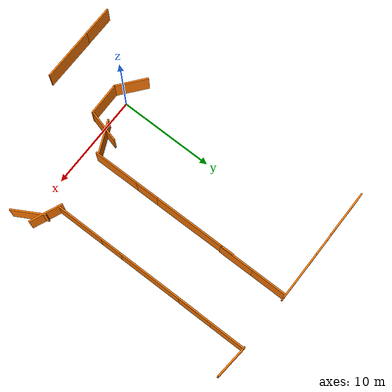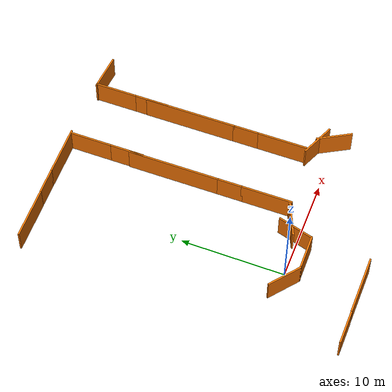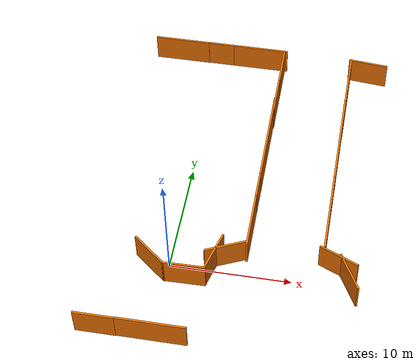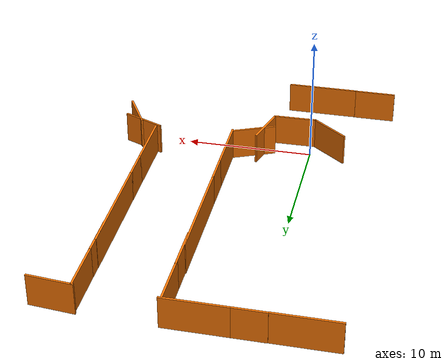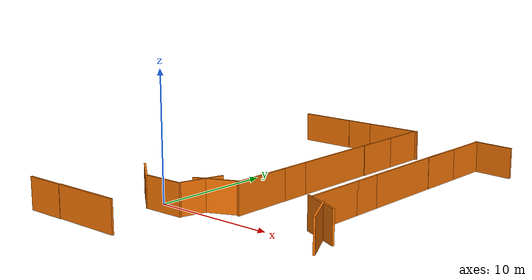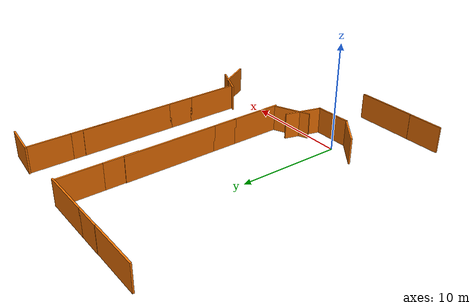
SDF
<sdf version="1.7">
 <world name="cimen_zemin_dunyasi">
  <model name="barier3">
   <pose>8.34987 9.56962 0 0 0 -1.56341</pose>
   <link name="Wall_5">
    <collision name="Wall_5_Collision">
     <geometry><box><size>9 0.15 2.5</size></box></geometry>
     <pose>0 0 1.25 0 -0 0</pose>
    </collision>
    <visual name="Wall_5_Visual">
     <pose>0 0 1.25 0 -0 0</pose>
     <geometry><box><size>9 0.15 2.5</size></box></geometry>
     <material>
      <script><uri>file://media/materials/scripts/gazebo.material</uri><name>Gazebo/Grey</name></script>
      <ambient>0.996078 0.47451 0.0196078 1</ambient>
     </material>
     <meta><layer>0</layer></meta>
    </visual>
    <pose>-3.6 -2.29057 0 0 -0 0</pose>
   </link>
   <link name="Wall_7">
    <collision name="Wall_7_Collision">
     <geometry><box><size>2.5 0.15 2.5</size></box></geometry>
     <pose>0 0 1.25 0 -0 0</pose>
    </collision>
    <visual name="Wall_7_Visual">
     <pose>0 0 1.25 0 -0 0</pose>
     <geometry><box><size>2.5 0.15 2.5</size></box></geometry>
     <material>
      <script><uri>file://media/materials/scripts/gazebo.material</uri><name>Gazebo/Grey</name></script>
      <ambient>0.996078 0.47451 0.0196078 1</ambient>
     </material>
     <meta><layer>0</layer></meta>
    </visual>
    <pose>2 -2.29057 0 0 -0 0</pose>
   </link>
   <link name="Wall_9">
    <collision name="Wall_9_Collision">
     <geometry><box><size>5 0.15 2.5</size></box></geometry>
     <pose>0 0 1.25 0 -0 0</pose>
    </collision>
    <visual name="Wall_9_Visual">
     <pose>0 0 1.25 0 -0 0</pose>
     <geometry><box><size>5 0.15 2.5</size></box></geometry>
     <material>
      <script><uri>file://media/materials/scripts/gazebo.material</uri><name>Gazebo/Grey</name></script>
      <ambient>0.996078 0.47451 0.0196078 1</ambient>
     </material>
     <meta><layer>0</layer></meta>
    </visual>
    <pose>5.6 -2.29057 0 0 -0 0</pose>
   </link>
   <static>1</static>
  </model>
  <model name="barier3_clone_clone_clone">
   <link name="Wall_5">
    <pose>-1.71579 -2.31114 0 0 -0 0</pose>
    <inertial>
     <inertia><ixx>0</ixx><ixy>0</ixy><ixz>0</ixz><iyy>0</iyy><iyz>0</iyz><izz>0</izz></inertia>
     <mass>0</mass>
    </inertial>
    <visual name="Wall_5_Visual">
     <pose>0 0 1.25 0 -0 0</pose>
     <geometry><box><size>4.94626 0.15 2.5</size></box></geometry>
     <material>
      <script><uri>file://media/materials/scripts/gazebo.material</uri><name>Gazebo/Grey</name></script>
      <ambient>0.996078 0.47451 0.0196078 1</ambient>
      <shader type="pixel"/>
     </material>
     <meta><layer>0</layer></meta>
    </visual>
    <collision name="Wall_5_Collision">
     <pose>0 0 1.25 0 -0 0</pose>
     <geometry><box><size>4.94626 0.15 2.5</size></box></geometry>
     <surface>
      <friction>
       <ode><mu>1</mu><mu2>1</mu2><fdir1>0 0 0</fdir1><slip1>0</slip1><slip2>0</slip2></ode>
       <torsional>
        <coefficient>1</coefficient>
        <patch_radius>0</patch_radius>
        <surface_radius>0</surface_radius>
        <use_patch_radius>1</use_patch_radius>
        <ode><slip>0</slip></ode>
       </torsional>
      </friction>
      <bounce><restitution_coefficient>0</restitution_coefficient><threshold>1e+06</threshold></bounce>
      <contact>
       <collide_without_contact>0</collide_without_contact>
       <collide_without_contact_bitmask>1</collide_without_contact_bitmask>
       <collide_bitmask>1</collide_bitmask>
       <ode>
        <soft_cfm>0</soft_cfm>
        <soft_erp>0.2</soft_erp>
        <kp>1e+13</kp>
        <kd>1</kd>
        <max_vel>0.01</max_vel>
        <min_depth>0</min_depth>
       </ode>
       <bullet>
        <split_impulse>1</split_impulse>
        <split_impulse_penetration_threshold>-0.01</split_impulse_penetration_threshold>
        <soft_cfm>0</soft_cfm>
        <soft_erp>0.2</soft_erp>
        <kp>1e+13</kp>
        <kd>1</kd>
       </bullet>
      </contact>
     </surface>
    </collision>
   </link>
   <link name="Wall_7">
    <pose>2 -2.29057 0 0 -0 0</pose>
    <visual name="Wall_7_Visual">
     <pose>0 0 1.25 0 -0 0</pose>
     <geometry><box><size>2.5 0.15 2.5</size></box></geometry>
     <material>
      <script><uri>file://media/materials/scripts/gazebo.material</uri><name>Gazebo/Grey</name></script>
      <ambient>0.996078 0.47451 0.0196078 1</ambient>
      <shader type="pixel"/>
     </material>
     <meta><layer>0</layer></meta>
    </visual>
    <collision name="Wall_7_Collision">
     <pose>0 0 1.25 0 -0 0</pose>
     <geometry><box><size>2.5 0.15 2.5</size></box></geometry>
     <surface>
      <friction>
       <ode><mu>1</mu><mu2>1</mu2><fdir1>0 0 0</fdir1><slip1>0</slip1><slip2>0</slip2></ode>
       <torsional>
        <coefficient>1</coefficient>
        <patch_radius>0</patch_radius>
        <surface_radius>0</surface_radius>
        <use_patch_radius>1</use_patch_radius>
        <ode><slip>0</slip></ode>
       </torsional>
      </friction>
      <bounce><restitution_coefficient>0</restitution_coefficient><threshold>1e+06</threshold></bounce>
      <contact>
       <collide_without_contact>0</collide_without_contact>
       <collide_without_contact_bitmask>1</collide_without_contact_bitmask>
       <collide_bitmask>1</collide_bitmask>
       <ode>
        <soft_cfm>0</soft_cfm>
        <soft_erp>0.2</soft_erp>
        <kp>1e+13</kp>
        <kd>1</kd>
        <max_vel>0.01</max_vel>
        <min_depth>0</min_depth>
       </ode>
       <bullet>
        <split_impulse>1</split_impulse>
        <split_impulse_penetration_threshold>-0.01</split_impulse_penetration_threshold>
        <soft_cfm>0</soft_cfm>
        <soft_erp>0.2</soft_erp>
        <kp>1e+13</kp>
        <kd>1</kd>
       </bullet>
      </contact>
     </surface>
    </collision>
   </link>
   <link name="Wall_9">
    <pose>5.6 -2.29057 0 0 -0 0</pose>
    <visual name="Wall_9_Visual">
     <pose>0 0 1.25 0 -0 0</pose>
     <geometry><box><size>5 0.15 2.5</size></box></geometry>
     <material>
      <script><uri>file://media/materials/scripts/gazebo.material</uri><name>Gazebo/Grey</name></script>
      <ambient>0.996078 0.47451 0.0196078 1</ambient>
      <shader type="pixel"/>
     </material>
     <meta><layer>0</layer></meta>
    </visual>
    <collision name="Wall_9_Collision">
     <pose>0 0 1.25 0 -0 0</pose>
     <geometry><box><size>5 0.15 2.5</size></box></geometry>
     <surface>
      <friction>
       <ode><mu>1</mu><mu2>1</mu2><fdir1>0 0 0</fdir1><slip1>0</slip1><slip2>0</slip2></ode>
       <torsional>
        <coefficient>1</coefficient>
        <patch_radius>0</patch_radius>
        <surface_radius>0</surface_radius>
        <use_patch_radius>1</use_patch_radius>
        <ode><slip>0</slip></ode>
       </torsional>
      </friction>
      <bounce><restitution_coefficient>0</restitution_coefficient><threshold>1e+06</threshold></bounce>
      <contact>
       <collide_without_contact>0</collide_without_contact>
       <collide_without_contact_bitmask>1</collide_without_contact_bitmask>
       <collide_bitmask>1</collide_bitmask>
       <ode>
        <soft_cfm>0</soft_cfm>
        <soft_erp>0.2</soft_erp>
        <kp>1e+13</kp>
        <kd>1</kd>
        <max_vel>0.01</max_vel>
        <min_depth>0</min_depth>
       </ode>
       <bullet>
        <split_impulse>1</split_impulse>
        <split_impulse_penetration_threshold>-0.01</split_impulse_penetration_threshold>
        <soft_cfm>0</soft_cfm>
        <soft_erp>0.2</soft_erp>
        <kp>1e+13</kp>
        <kd>1</kd>
       </bullet>
      </contact>
     </surface>
    </collision>
   </link>
   <static>1</static>
   <pose>-1.81563 25.8917 0 0 -0 0</pose>
  </model>
  <model name="barier3_clone_clone_clone_clone_0_clone_clone_clone_clone_0_clone">
   <link name="Wall_5">
    <pose>-0.876122 -2.31251 -0.000674 0 -0 0</pose>
    <inertial>
     <inertia><ixx>0</ixx><ixy>0</ixy><ixz>0</ixz><iyy>0</iyy><iyz>0</iyz><izz>0</izz></inertia>
     <mass>0</mass>
    </inertial>
    <visual name="Wall_5_Visual">
     <pose>0 0 1.25 0 -0 0</pose>
     <geometry><box><size>3.28339 0.15 2.5</size></box></geometry>
     <material>
      <script><uri>file://media/materials/scripts/gazebo.material</uri><name>Gazebo/Grey</name></script>
      <ambient>0.996078 0.47451 0.0196078 1</ambient>
      <shader type="pixel"/>
     </material>
     <meta><layer>0</layer></meta>
    </visual>
    <collision name="Wall_5_Collision">
     <pose>0 0 1.25 0 -0 0</pose>
     <geometry><box><size>3.28339 0.15 2.5</size></box></geometry>
     <surface>
      <friction>
       <ode><mu>1</mu><mu2>1</mu2><fdir1>0 0 0</fdir1><slip1>0</slip1><slip2>0</slip2></ode>
       <torsional>
        <coefficient>1</coefficient>
        <patch_radius>0</patch_radius>
        <surface_radius>0</surface_radius>
        <use_patch_radius>1</use_patch_radius>
        <ode><slip>0</slip></ode>
       </torsional>
      </friction>
      <bounce><restitution_coefficient>0</restitution_coefficient><threshold>1e+06</threshold></bounce>
      <contact>
       <collide_without_contact>0</collide_without_contact>
       <collide_without_contact_bitmask>1</collide_without_contact_bitmask>
       <collide_bitmask>1</collide_bitmask>
       <ode>
        <soft_cfm>0</soft_cfm>
        <soft_erp>0.2</soft_erp>
        <kp>1e+13</kp>
        <kd>1</kd>
        <max_vel>0.01</max_vel>
        <min_depth>0</min_depth>
       </ode>
       <bullet>
        <split_impulse>1</split_impulse>
        <split_impulse_penetration_threshold>-0.01</split_impulse_penetration_threshold>
        <soft_cfm>0</soft_cfm>
        <soft_erp>0.2</soft_erp>
        <kp>1e+13</kp>
        <kd>1</kd>
       </bullet>
      </contact>
     </surface>
    </collision>
   </link>
   <link name="Wall_9">
    <pose>3.5903 -2.29153 0.020971 0 -0 0</pose>
    <inertial>
     <inertia><ixx>0</ixx><ixy>0</ixy><ixz>0</ixz><iyy>0</iyy><iyz>0</iyz><izz>0</izz></inertia>
     <mass>0</mass>
    </inertial>
    <visual name="Wall_9_Visual">
     <pose>0 0 1.25 0 -0 0</pose>
     <geometry><box><size>5.65108 0.15 2.5</size></box></geometry>
     <material>
      <script><uri>file://media/materials/scripts/gazebo.material</uri><name>Gazebo/Grey</name></script>
      <ambient>0.996078 0.47451 0.0196078 1</ambient>
      <shader type="pixel"/>
     </material>
     <meta><layer>0</layer></meta>
    </visual>
    <collision name="Wall_9_Collision">
     <pose>0 0 1.25 0 -0 0</pose>
     <geometry><box><size>5.65108 0.15 2.5</size></box></geometry>
     <surface>
      <friction>
       <ode><mu>1</mu><mu2>1</mu2><fdir1>0 0 0</fdir1><slip1>0</slip1><slip2>0</slip2></ode>
       <torsional>
        <coefficient>1</coefficient>
        <patch_radius>0</patch_radius>
        <surface_radius>0</surface_radius>
        <use_patch_radius>1</use_patch_radius>
        <ode><slip>0</slip></ode>
       </torsional>
      </friction>
      <bounce><restitution_coefficient>0</restitution_coefficient><threshold>1e+06</threshold></bounce>
      <contact>
       <collide_without_contact>0</collide_without_contact>
       <collide_without_contact_bitmask>1</collide_without_contact_bitmask>
       <collide_bitmask>1</collide_bitmask>
       <ode>
        <soft_cfm>0</soft_cfm>
        <soft_erp>0.2</soft_erp>
        <kp>1e+13</kp>
        <kd>1</kd>
        <max_vel>0.01</max_vel>
        <min_depth>0</min_depth>
       </ode>
       <bullet>
        <split_impulse>1</split_impulse>
        <split_impulse_penetration_threshold>-0.01</split_impulse_penetration_threshold>
        <soft_cfm>0</soft_cfm>
        <soft_erp>0.2</soft_erp>
        <kp>1e+13</kp>
        <kd>1</kd>
       </bullet>
      </contact>
     </surface>
    </collision>
   </link>
   <static>1</static>
   <pose>-3.50952 -4.75677 0 0 -0 0</pose>
  </model>
  <model name="barier3_clone_clone_clone_clone_0_clone_clone_0_clone_clone_clone">
   <link name="Wall_5">
    <pose>-1.14926 -2.31114 0 0 -0 0</pose>
    <inertial>
     <inertia><ixx>0</ixx><ixy>0</ixy><ixz>0</ixz><iyy>0</iyy><iyz>0</iyz><izz>0</izz></inertia>
     <mass>0</mass>
    </inertial>
    <visual name="Wall_5_Visual">
     <pose>0 0 1.25 0 -0 0</pose>
     <geometry><box><size>4.04839 0.15 2.5</size></box></geometry>
     <material>
      <script><uri>file://media/materials/scripts/gazebo.material</uri><name>Gazebo/Grey</name></script>
      <ambient>0.996078 0.47451 0.0196078 1</ambient>
      <shader type="pixel"/>
     </material>
     <meta><layer>0</layer></meta>
    </visual>
    <collision name="Wall_5_Collision">
     <pose>0 0 1.25 0 -0 0</pose>
     <geometry><box><size>4.04839 0.15 2.5</size></box></geometry>
     <surface>
      <friction>
       <ode><mu>1</mu><mu2>1</mu2><fdir1>0 0 0</fdir1><slip1>0</slip1><slip2>0</slip2></ode>
       <torsional>
        <coefficient>1</coefficient>
        <patch_radius>0</patch_radius>
        <surface_radius>0</surface_radius>
        <use_patch_radius>1</use_patch_radius>
        <ode><slip>0</slip></ode>
       </torsional>
      </friction>
      <bounce><restitution_coefficient>0</restitution_coefficient><threshold>1e+06</threshold></bounce>
      <contact>
       <collide_without_contact>0</collide_without_contact>
       <collide_without_contact_bitmask>1</collide_without_contact_bitmask>
       <collide_bitmask>1</collide_bitmask>
       <ode>
        <soft_cfm>0</soft_cfm>
        <soft_erp>0.2</soft_erp>
        <kp>1e+13</kp>
        <kd>1</kd>
        <max_vel>0.01</max_vel>
        <min_depth>0</min_depth>
       </ode>
       <bullet>
        <split_impulse>1</split_impulse>
        <split_impulse_penetration_threshold>-0.01</split_impulse_penetration_threshold>
        <soft_cfm>0</soft_cfm>
        <soft_erp>0.2</soft_erp>
        <kp>1e+13</kp>
        <kd>1</kd>
       </bullet>
      </contact>
     </surface>
    </collision>
   </link>
   <link name="Wall_9">
    <pose>2.34493 -2.31065 0 0 -0 0</pose>
    <inertial>
     <inertia><ixx>0</ixx><ixy>0</ixy><ixz>0</ixz><iyy>0</iyy><iyz>0</iyz><izz>0</izz></inertia>
     <mass>0</mass>
    </inertial>
    <visual name="Wall_9_Visual">
     <pose>0 0 1.25 0 -0 0</pose>
     <geometry><box><size>3.66586 0.15 2.5</size></box></geometry>
     <material>
      <script><uri>file://media/materials/scripts/gazebo.material</uri><name>Gazebo/Grey</name></script>
      <ambient>0.996078 0.47451 0.0196078 1</ambient>
      <shader type="pixel"/>
     </material>
     <meta><layer>0</layer></meta>
    </visual>
    <collision name="Wall_9_Collision">
     <pose>0 0 1.25 0 -0 0</pose>
     <geometry><box><size>3.66586 0.15 2.5</size></box></geometry>
     <surface>
      <friction>
       <ode><mu>1</mu><mu2>1</mu2><fdir1>0 0 0</fdir1><slip1>0</slip1><slip2>0</slip2></ode>
       <torsional>
        <coefficient>1</coefficient>
        <patch_radius>0</patch_radius>
        <surface_radius>0</surface_radius>
        <use_patch_radius>1</use_patch_radius>
        <ode><slip>0</slip></ode>
       </torsional>
      </friction>
      <bounce><restitution_coefficient>0</restitution_coefficient><threshold>1e+06</threshold></bounce>
      <contact>
       <collide_without_contact>0</collide_without_contact>
       <collide_without_contact_bitmask>1</collide_without_contact_bitmask>
       <collide_bitmask>1</collide_bitmask>
       <ode>
        <soft_cfm>0</soft_cfm>
        <soft_erp>0.2</soft_erp>
        <kp>1e+13</kp>
        <kd>1</kd>
        <max_vel>0.01</max_vel>
        <min_depth>0</min_depth>
       </ode>
       <bullet>
        <split_impulse>1</split_impulse>
        <split_impulse_penetration_threshold>-0.01</split_impulse_penetration_threshold>
        <soft_cfm>0</soft_cfm>
        <soft_erp>0.2</soft_erp>
        <kp>1e+13</kp>
        <kd>1</kd>
       </bullet>
      </contact>
     </surface>
    </collision>
   </link>
   <static>1</static>
   <pose>8.35073 20.4081 0 0 0 -1.56598</pose>
  </model>
  <model name="barier3_clone_0">
   <pose>14.5457 10.2617 0 0 0 -1.56341</pose>
   <link name="Wall_5">
    <collision name="Wall_5_Collision">
     <geometry><box><size>9 0.15 2.5</size></box></geometry>
     <pose>0 0 1.25 0 -0 0</pose>
    </collision>
    <visual name="Wall_5_Visual">
     <pose>0 0 1.25 0 -0 0</pose>
     <geometry><box><size>9 0.15 2.5</size></box></geometry>
     <material>
      <script><uri>file://media/materials/scripts/gazebo.material</uri><name>Gazebo/Grey</name></script>
      <ambient>0.996078 0.47451 0.0196078 1</ambient>
     </material>
     <meta><layer>0</layer></meta>
    </visual>
    <pose>-3.6 -2.29057 0 0 -0 0</pose>
   </link>
   <link name="Wall_7">
    <collision name="Wall_7_Collision">
     <geometry><box><size>2.5 0.15 2.5</size></box></geometry>
     <pose>0 0 1.25 0 -0 0</pose>
    </collision>
    <visual name="Wall_7_Visual">
     <pose>0 0 1.25 0 -0 0</pose>
     <geometry><box><size>2.5 0.15 2.5</size></box></geometry>
     <material>
      <script><uri>file://media/materials/scripts/gazebo.material</uri><name>Gazebo/Grey</name></script>
      <ambient>0.996078 0.47451 0.0196078 1</ambient>
     </material>
     <meta><layer>0</layer></meta>
    </visual>
    <pose>2 -2.29057 0 0 -0 0</pose>
   </link>
   <link name="Wall_9">
    <collision name="Wall_9_Collision">
     <geometry><box><size>5 0.15 2.5</size></box></geometry>
     <pose>0 0 1.25 0 -0 0</pose>
    </collision>
    <visual name="Wall_9_Visual">
     <pose>0 0 1.25 0 -0 0</pose>
     <geometry><box><size>5 0.15 2.5</size></box></geometry>
     <material>
      <script><uri>file://media/materials/scripts/gazebo.material</uri><name>Gazebo/Grey</name></script>
      <ambient>0.996078 0.47451 0.0196078 1</ambient>
     </material>
     <meta><layer>0</layer></meta>
    </visual>
    <pose>5.6 -2.29057 0 0 -0 0</pose>
   </link>
   <static>1</static>
  </model>
  <model name="barier3_clone_clone_clone_clone_0_clone_clone_0_clone_clone_clone_clone">
   <link name="Wall_5">
    <pose>-1.14926 -2.31114 0 0 -0 0</pose>
    <inertial>
     <inertia><ixx>0</ixx><ixy>0</ixy><ixz>0</ixz><iyy>0</iyy><iyz>0</iyz><izz>0</izz></inertia>
     <mass>0</mass>
    </inertial>
    <visual name="Wall_5_Visual">
     <pose>0 0 1.25 0 -0 0</pose>
     <geometry><box><size>4.04839 0.15 2.5</size></box></geometry>
     <material>
      <script><uri>file://media/materials/scripts/gazebo.material</uri><name>Gazebo/Grey</name></script>
      <ambient>0.996078 0.47451 0.0196078 1</ambient>
      <shader type="pixel"/>
     </material>
     <meta><layer>0</layer></meta>
    </visual>
    <collision name="Wall_5_Collision">
     <pose>0 0 1.25 0 -0 0</pose>
     <geometry><box><size>4.04839 0.15 2.5</size></box></geometry>
     <surface>
      <friction>
       <ode><mu>1</mu><mu2>1</mu2><fdir1>0 0 0</fdir1><slip1>0</slip1><slip2>0</slip2></ode>
       <torsional>
        <coefficient>1</coefficient>
        <patch_radius>0</patch_radius>
        <surface_radius>0</surface_radius>
        <use_patch_radius>1</use_patch_radius>
        <ode><slip>0</slip></ode>
       </torsional>
      </friction>
      <bounce><restitution_coefficient>0</restitution_coefficient><threshold>1e+06</threshold></bounce>
      <contact>
       <collide_without_contact>0</collide_without_contact>
       <collide_without_contact_bitmask>1</collide_without_contact_bitmask>
       <collide_bitmask>1</collide_bitmask>
       <ode>
        <soft_cfm>0</soft_cfm>
        <soft_erp>0.2</soft_erp>
        <kp>1e+13</kp>
        <kd>1</kd>
        <max_vel>0.01</max_vel>
        <min_depth>0</min_depth>
       </ode>
       <bullet>
        <split_impulse>1</split_impulse>
        <split_impulse_penetration_threshold>-0.01</split_impulse_penetration_threshold>
        <soft_cfm>0</soft_cfm>
        <soft_erp>0.2</soft_erp>
        <kp>1e+13</kp>
        <kd>1</kd>
       </bullet>
      </contact>
     </surface>
    </collision>
   </link>
   <link name="Wall_9">
    <pose>2.34493 -2.31065 0 0 -0 0</pose>
    <inertial>
     <inertia><ixx>0</ixx><ixy>0</ixy><ixz>0</ixz><iyy>0</iyy><iyz>0</iyz><izz>0</izz></inertia>
     <mass>0</mass>
    </inertial>
    <visual name="Wall_9_Visual">
     <pose>0 0 1.25 0 -0 0</pose>
     <geometry><box><size>3.66586 0.15 2.5</size></box></geometry>
     <material>
      <script><uri>file://media/materials/scripts/gazebo.material</uri><name>Gazebo/Grey</name></script>
      <ambient>0.996078 0.47451 0.0196078 1</ambient>
      <shader type="pixel"/>
     </material>
     <meta><layer>0</layer></meta>
    </visual>
    <collision name="Wall_9_Collision">
     <pose>0 0 1.25 0 -0 0</pose>
     <geometry><box><size>3.66586 0.15 2.5</size></box></geometry>
     <surface>
      <friction>
       <ode><mu>1</mu><mu2>1</mu2><fdir1>0 0 0</fdir1><slip1>0</slip1><slip2>0</slip2></ode>
       <torsional>
        <coefficient>1</coefficient>
        <patch_radius>0</patch_radius>
        <surface_radius>0</surface_radius>
        <use_patch_radius>1</use_patch_radius>
        <ode><slip>0</slip></ode>
       </torsional>
      </friction>
      <bounce><restitution_coefficient>0</restitution_coefficient><threshold>1e+06</threshold></bounce>
      <contact>
       <collide_without_contact>0</collide_without_contact>
       <collide_without_contact_bitmask>1</collide_without_contact_bitmask>
       <collide_bitmask>1</collide_bitmask>
       <ode>
        <soft_cfm>0</soft_cfm>
        <soft_erp>0.2</soft_erp>
        <kp>1e+13</kp>
        <kd>1</kd>
        <max_vel>0.01</max_vel>
        <min_depth>0</min_depth>
       </ode>
       <bullet>
        <split_impulse>1</split_impulse>
        <split_impulse_penetration_threshold>-0.01</split_impulse_penetration_threshold>
        <soft_cfm>0</soft_cfm>
        <soft_erp>0.2</soft_erp>
        <kp>1e+13</kp>
        <kd>1</kd>
       </bullet>
      </contact>
     </surface>
    </collision>
   </link>
   <static>1</static>
   <pose>14.516 20.3467 0 0 0 -1.56598</pose>
  </model>
  <model name="barrier2_clone_clone_0">
   <pose>13.1136 1.14409 0 0 -0 2.08676</pose>
   <link name="Wall_3">
    <collision name="Wall_3_Collision">
     <geometry><box><size>3.5 0.15 2.5</size></box></geometry>
     <pose>0 0 1.25 0 -0 0</pose>
    </collision>
    <visual name="Wall_3_Visual">
     <pose>0 0 1.25 0 -0 0</pose>
     <geometry><box><size>3.5 0.15 2.5</size></box></geometry>
     <material>
      <script><uri>file://media/materials/scripts/gazebo.material</uri><name>Gazebo/Grey</name></script>
      <ambient>0.996078 0.47451 0.0196078 1</ambient>
     </material>
     <meta><layer>0</layer></meta>
    </visual>
    <pose>-1.55327 -0.720218 0 0 -0 0</pose>
   </link>
   <static>1</static>
  </model>
  <model name="barrier2_clone_clone_0_clone">
   <pose>11.8327 1.44518 0 0 -0 2.73706</pose>
   <link name="Wall_3">
    <collision name="Wall_3_Collision">
     <geometry><box><size>3.5 0.15 2.5</size></box></geometry>
     <pose>0 0 1.25 0 -0 0</pose>
    </collision>
    <visual name="Wall_3_Visual">
     <pose>0 0 1.25 0 -0 0</pose>
     <geometry><box><size>3.5 0.15 2.5</size></box></geometry>
     <material>
      <script><uri>file://media/materials/scripts/gazebo.material</uri><name>Gazebo/Grey</name></script>
      <ambient>0.996078 0.47451 0.0196078 1</ambient>
     </material>
     <meta><layer>0</layer></meta>
    </visual>
    <pose>-1.55327 -0.720218 0 0 -0 0</pose>
   </link>
   <static>1</static>
  </model>
  <model name="barrier2_clone_clone_0_clone_0">
   <pose>3.32046 -0.310571 0 0 0 -2.72327</pose>
   <link name="Wall_3">
    <collision name="Wall_3_Collision">
     <geometry><box><size>3.5 0.15 2.5</size></box></geometry>
     <pose>0 0 1.25 0 -0 0</pose>
    </collision>
    <visual name="Wall_3_Visual">
     <pose>0 0 1.25 0 -0 0</pose>
     <geometry><box><size>3.5 0.15 2.5</size></box></geometry>
     <material>
      <script><uri>file://media/materials/scripts/gazebo.material</uri><name>Gazebo/Grey</name></script>
      <ambient>0.996078 0.47451 0.0196078 1</ambient>
     </material>
     <meta><layer>0</layer></meta>
    </visual>
    <pose>-1.55327 -0.720218 0 0 -0 0</pose>
   </link>
   <static>1</static>
  </model>
  <model name="barrier2_clone_clone_0_clone_0_clone">
   <pose>3.93477 -1.35196 0 0 0 -1.83607</pose>
   <link name="Wall_3">
    <collision name="Wall_3_Collision">
     <geometry><box><size>3.5 0.15 2.5</size></box></geometry>
     <pose>0 0 1.25 0 -0 0</pose>
    </collision>
    <visual name="Wall_3_Visual">
     <pose>0 0 1.25 0 -0 0</pose>
     <geometry><box><size>3.5 0.15 2.5</size></box></geometry>
     <material>
      <script><uri>file://media/materials/scripts/gazebo.material</uri><name>Gazebo/Grey</name></script>
      <ambient>0.996078 0.47451 0.0196078 1</ambient>
     </material>
     <meta><layer>0</layer></meta>
    </visual>
    <pose>-1.55327 -0.720218 0 0 -0 0</pose>
   </link>
   <static>1</static>
  </model>
  <model name="barrier2_clone_clone_0_clone_clone">
   <pose>-0.007255 -2.146 0 0 0 -3.12669</pose>
   <link name="Wall_3">
    <collision name="Wall_3_Collision">
     <geometry><box><size>3.5 0.15 2.5</size></box></geometry>
     <pose>0 0 1.25 0 -0 0</pose>
    </collision>
    <visual name="Wall_3_Visual">
     <pose>0 0 1.25 0 -0 0</pose>
     <geometry><box><size>3.5 0.15 2.5</size></box></geometry>
     <material>
      <script><uri>file://media/materials/scripts/gazebo.material</uri><name>Gazebo/Grey</name></script>
      <ambient>0.996078 0.47451 0.0196078 1</ambient>
     </material>
     <meta><layer>0</layer></meta>
    </visual>
    <pose>-1.55327 -0.720218 0 0 -0 0</pose>
   </link>
   <static>1</static>
  </model>
  <model name="barrier2_clone_clone_0_clone_clone_clone">
   <pose>-3.1025 0.012439 0 0 -0 2.46427</pose>
   <link name="Wall_3">
    <collision name="Wall_3_Collision">
     <geometry><box><size>3.5 0.15 2.5</size></box></geometry>
     <pose>0 0 1.25 0 -0 0</pose>
    </collision>
    <visual name="Wall_3_Visual">
     <pose>0 0 1.25 0 -0 0</pose>
     <geometry><box><size>3.5 0.15 2.5</size></box></geometry>
     <material>
      <script><uri>file://media/materials/scripts/gazebo.material</uri><name>Gazebo/Grey</name></script>
      <ambient>0.996078 0.47451 0.0196078 1</ambient>
     </material>
     <meta><layer>0</layer></meta>
    </visual>
    <pose>-1.55327 -0.720218 0 0 -0 0</pose>
   </link>
   <static>1</static>
  </model>
  <model name="barrier2_clone_clone_0_clone_clone_0">
   <pose>12.1582 22.7629 0 0 -0 3.05009</pose>
   <link name="Wall_3">
    <collision name="Wall_3_Collision">
     <geometry><box><size>3.5 0.15 2.5</size></box></geometry>
     <pose>0 0 1.25 0 -0 0</pose>
    </collision>
    <visual name="Wall_3_Visual">
     <pose>0 0 1.25 0 -0 0</pose>
     <geometry><box><size>3.5 0.15 2.5</size></box></geometry>
     <material>
      <script><uri>file://media/materials/scripts/gazebo.material</uri><name>Gazebo/Grey</name></script>
      <ambient>0.996078 0.47451 0.0196078 1</ambient>
     </material>
     <meta><layer>0</layer></meta>
    </visual>
    <pose>-1.55327 -0.720218 0 0 -0 0</pose>
   </link>
   <static>1</static>
  </model>
 </world>
</sdf>
